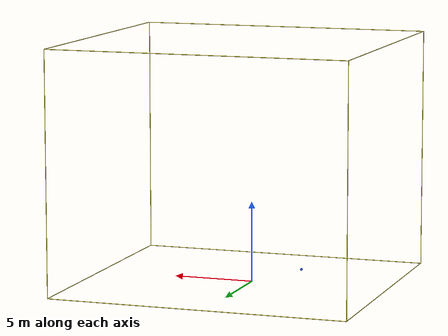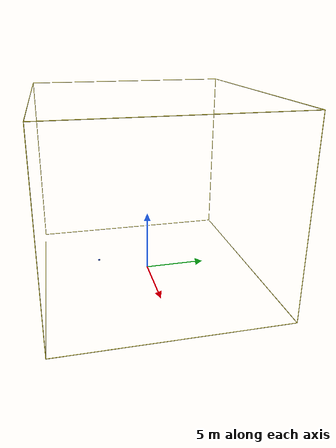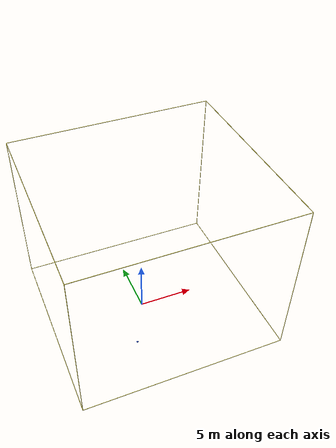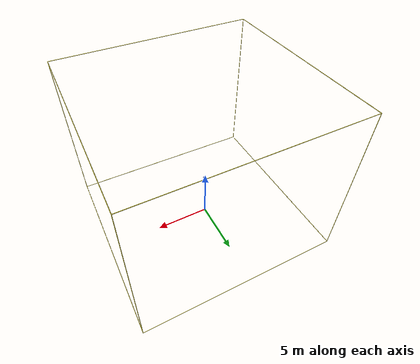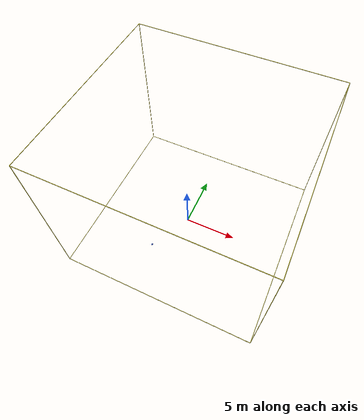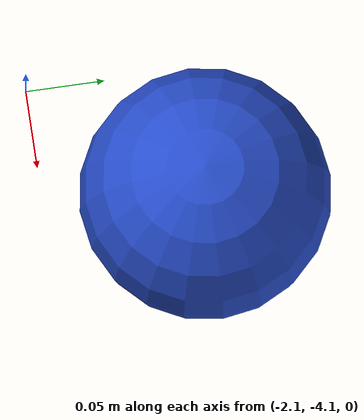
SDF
<?xml version="1.0"?>
<sdf version="1.4">
  <model name="cube">
    <!--Definition of the robot frame-->
    <link name="frame">
      <pose>0 0 0 0 0 0</pose>
      <inertial>
        <inertia>
          <ixx>100000</ixx>
          <iyy>100000</iyy>
          <izz>100000</izz>
          <ixy>0</ixy>
          <ixz>0</ixz>
          <iyz>0</iyz>
        </inertia>
        <mass>100000</mass>
      </inertial>
      <visual name="visual1">
        <geometry>
          <cylinder>
            <radius>0.02</radius>
            <length>15.0</length>
          </cylinder>
        </geometry>
        <pose>-8.600000 -8.660300 7.500000 0.000000 0.000000 0.000000</pose>
        <material>
          <script>
            <uri>file://media/materials/scripts/kitchen.material</uri>
            <name>Gazebo/Yellow</name>
          </script>
        </material>
      </visual>
      <collision name="collision1">
        <geometry>
          <cylinder>
            <radius>0.02</radius>
          </cylinder>
        </geometry>
        <pose>-8.600000 -8.660300 7.500000 0.000000 0.000000 0.000000</pose>
      </collision>
      <visual name="visual2">
        <geometry>
          <cylinder>
            <radius>0.02</radius>
            <length>17.3206</length>
          </cylinder>
        </geometry>
        <pose>-8.600000 0.000000 0.000000 1.570796 0.000000 0.000000</pose>
        <material>
          <script>
            <uri>file://media/materials/scripts/kitchen.material</uri>
            <name>Gazebo/Yellow</name>
          </script>
        </material>
      </visual>
      <collision name="collision2">
        <geometry>
          <cylinder>
            <radius>0.02</radius>
          </cylinder>
        </geometry>
        <pose>-8.600000 0.000000 0.000000 1.570796 0.000000 0.000000</pose>
      </collision>
      <visual name="visual3">
        <geometry>
          <cylinder>
            <radius>0.02</radius>
            <length>18.6</length>
          </cylinder>
        </geometry>
        <pose>0.700000 -8.660300 0.000000 0.000000 1.570796 0.000000</pose>
        <material>
          <script>
            <uri>file://media/materials/scripts/kitchen.material</uri>
            <name>Gazebo/Yellow</name>
          </script>
        </material>
      </visual>
      <collision name="collision3">
        <geometry>
          <cylinder>
            <radius>0.02</radius>
          </cylinder>
        </geometry>
        <pose>0.700000 -8.660300 0.000000 0.000000 1.570796 0.000000</pose>
      </collision>
      <visual name="visual4">
        <geometry>
          <cylinder>
            <radius>0.02</radius>
            <length>17.3206</length>
          </cylinder>
        </geometry>
        <pose>-8.600000 0.000000 15.000000 1.570796 0.000000 0.000000</pose>
        <material>
          <script>
            <uri>file://media/materials/scripts/kitchen.material</uri>
            <name>Gazebo/Yellow</name>
          </script>
        </material>
      </visual>
      <collision name="collision4">
        <geometry>
          <cylinder>
            <radius>0.02</radius>
          </cylinder>
        </geometry>
        <pose>-8.600000 0.000000 15.000000 1.570796 0.000000 0.000000</pose>
      </collision>
      <visual name="visual5">
        <geometry>
          <cylinder>
            <radius>0.02</radius>
            <length>18.6</length>
          </cylinder>
        </geometry>
        <pose>0.700000 -8.660300 15.000000 0.000000 1.570796 0.000000</pose>
        <material>
          <script>
            <uri>file://media/materials/scripts/kitchen.material</uri>
            <name>Gazebo/Yellow</name>
          </script>
        </material>
      </visual>
      <collision name="collision5">
        <geometry>
          <cylinder>
            <radius>0.02</radius>
          </cylinder>
        </geometry>
        <pose>0.700000 -8.660300 15.000000 0.000000 1.570796 0.000000</pose>
      </collision>
      <visual name="visual6">
        <geometry>
          <cylinder>
            <radius>0.02</radius>
            <length>15.0</length>
          </cylinder>
        </geometry>
        <pose>-8.600000 8.660300 7.500000 0.000000 0.000000 0.000000</pose>
        <material>
          <script>
            <uri>file://media/materials/scripts/kitchen.material</uri>
            <name>Gazebo/Yellow</name>
          </script>
        </material>
      </visual>
      <collision name="collision6">
        <geometry>
          <cylinder>
            <radius>0.02</radius>
          </cylinder>
        </geometry>
        <pose>-8.600000 8.660300 7.500000 0.000000 0.000000 0.000000</pose>
      </collision>
      <visual name="visual7">
        <geometry>
          <cylinder>
            <radius>0.02</radius>
            <length>18.6</length>
          </cylinder>
        </geometry>
        <pose>0.700000 8.660300 0.000000 0.000000 1.570796 0.000000</pose>
        <material>
          <script>
            <uri>file://media/materials/scripts/kitchen.material</uri>
            <name>Gazebo/Yellow</name>
          </script>
        </material>
      </visual>
      <collision name="collision7">
        <geometry>
          <cylinder>
            <radius>0.02</radius>
          </cylinder>
        </geometry>
        <pose>0.700000 8.660300 0.000000 0.000000 1.570796 0.000000</pose>
      </collision>
      <visual name="visual8">
        <geometry>
          <cylinder>
            <radius>0.02</radius>
            <length>18.6</length>
          </cylinder>
        </geometry>
        <pose>0.700000 8.660300 15.000000 0.000000 1.570796 0.000000</pose>
        <material>
          <script>
            <uri>file://media/materials/scripts/kitchen.material</uri>
            <name>Gazebo/Yellow</name>
          </script>
        </material>
      </visual>
      <collision name="collision8">
        <geometry>
          <cylinder>
            <radius>0.02</radius>
          </cylinder>
        </geometry>
        <pose>0.700000 8.660300 15.000000 0.000000 1.570796 0.000000</pose>
      </collision>
      <visual name="visual9">
        <geometry>
          <cylinder>
            <radius>0.02</radius>
            <length>15.0</length>
          </cylinder>
        </geometry>
        <pose>10.000000 -8.660300 7.500000 0.000000 0.000000 0.000000</pose>
        <material>
          <script>
            <uri>file://media/materials/scripts/kitchen.material</uri>
            <name>Gazebo/Yellow</name>
          </script>
        </material>
      </visual>
      <collision name="collision9">
        <geometry>
          <cylinder>
            <radius>0.02</radius>
          </cylinder>
        </geometry>
        <pose>10.000000 -8.660300 7.500000 0.000000 0.000000 0.000000</pose>
      </collision>
      <visual name="visual10">
        <geometry>
          <cylinder>
            <radius>0.02</radius>
            <length>17.3206</length>
          </cylinder>
        </geometry>
        <pose>10.000000 0.000000 0.000000 1.570796 0.000000 0.000000</pose>
        <material>
          <script>
            <uri>file://media/materials/scripts/kitchen.material</uri>
            <name>Gazebo/Yellow</name>
          </script>
        </material>
      </visual>
      <collision name="collision10">
        <geometry>
          <cylinder>
            <radius>0.02</radius>
          </cylinder>
        </geometry>
        <pose>10.000000 0.000000 0.000000 1.570796 0.000000 0.000000</pose>
      </collision>
      <visual name="visual11">
        <geometry>
          <cylinder>
            <radius>0.02</radius>
            <length>17.3206</length>
          </cylinder>
        </geometry>
        <pose>10.000000 0.000000 15.000000 1.570796 0.000000 0.000000</pose>
        <material>
          <script>
            <uri>file://media/materials/scripts/kitchen.material</uri>
            <name>Gazebo/Yellow</name>
          </script>
        </material>
      </visual>
      <collision name="collision11">
        <geometry>
          <cylinder>
            <radius>0.02</radius>
          </cylinder>
        </geometry>
        <pose>10.000000 0.000000 15.000000 1.570796 0.000000 0.000000</pose>
      </collision>
      <visual name="visual12">
        <geometry>
          <cylinder>
            <radius>0.02</radius>
            <length>15.0</length>
          </cylinder>
        </geometry>
        <pose>10.000000 8.660300 7.500000 0.000000 0.000000 0.000000</pose>
        <material>
          <script>
            <uri>file://media/materials/scripts/kitchen.material</uri>
            <name>Gazebo/Yellow</name>
          </script>
        </material>
      </visual>
      <collision name="collision12">
        <geometry>
          <cylinder>
            <radius>0.02</radius>
          </cylinder>
        </geometry>
        <pose>10.000000 8.660300 7.500000 0.000000 0.000000 0.000000</pose>
      </collision>
      <visual name="visualpd">
        <plugin name="draw_traj" filename="libdraw_traj.so"/>
        <geometry>
          <sphere>
            <radius>0.5</radius>
          </sphere>
        </geometry>
        <transparency>1.0</transparency>
      </visual>
    </link>
    <!--Definition of the robot platform-->
    <link name="platform">
      <pose>-2.000000 -4.000000 0.080000 0.000000 0.000000 0.000000</pose>
      <visual name="visualpf">
        <geometry>
          <sphere>
            <radius>0.08</radius>
          </sphere>
        </geometry>
        <material>
          <script>
            <uri>file://media/materials/scripts/kitchen.material</uri>
            <name>Gazebo/Blue</name>
          </script>
        </material>
      </visual>
      <collision name="collisionpf">
        <geometry>
          <sphere>
            <radius>0.08</radius>
          </sphere>
        </geometry>
      </collision>
      <inertial>
        <inertia>
          <ixx>0.256</ixx>
          <iyy>0.256</iyy>
          <izz>0.256</izz>
          <ixy>0.0</ixy>
          <ixz>0.0</ixz>
          <iyz>0.0</iyz>
        </inertia>
        <mass>100</mass>
      </inertial>
    </link>
    <plugin name="cdpr_gazebo_plugin" filename="libcdpr_gazebo_plugin.so"/>
  </model>
</sdf>
